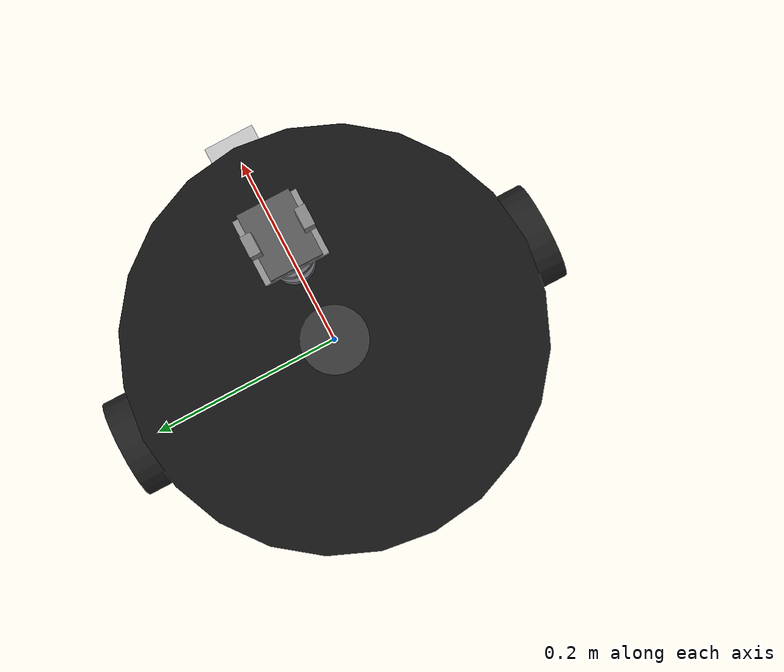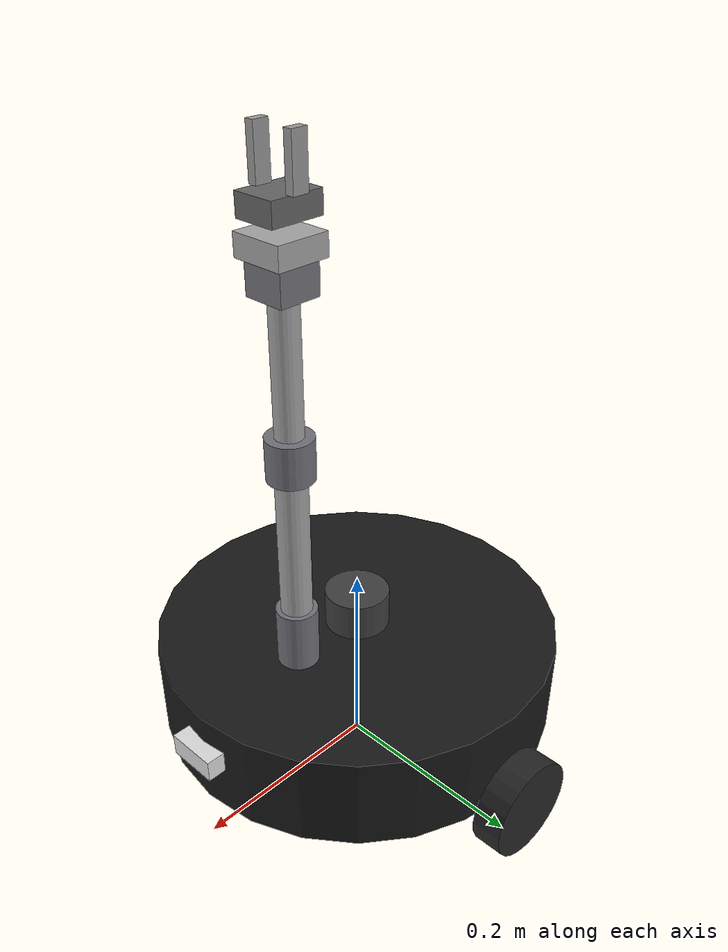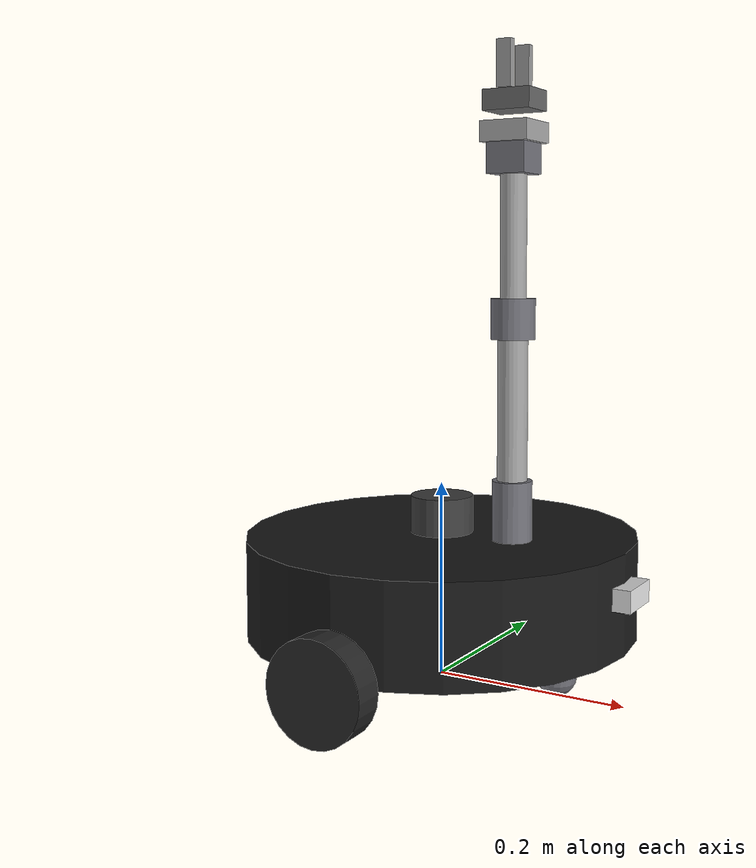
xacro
<?xml version="1.0"?>
<robot name="toy_robot" xmlns:xacro="http://www.ros.org/wiki/xacro">

    <xacro:include filename="$(find toy_robot_description)/urdf/dimensions.xacro" />
    <xacro:include filename="$(find toy_robot_description)/urdf/base_mobile.xacro" />
    <xacro:include filename="$(find toy_robot_description)/urdf/wheels.xacro" />
    <xacro:include filename="$(find toy_robot_description)/urdf/camera.xacro" />
    <xacro:include filename="$(find toy_robot_description)/urdf/lidar.xacro" />
    <xacro:include filename="$(find toy_robot_description)/urdf/arm_6dof.xacro" />
    <xacro:include filename="$(find toy_robot_description)/urdf/gripper.xacro" />
    <xacro:include filename="$(find toy_robot_description)/urdf/gazebo_plugins.xacro" />

</robot>

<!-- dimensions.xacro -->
<robot name="toy_robot" xmlns:xacro="http://www.ros.org/wiki/xacro">

    <!-- Base -->
    <xacro:property name="base_radius" value="0.2" />
    <xacro:property name="base_height" value="0.1" />
    <xacro:property name="base_mass" value="3.5" />

    <!-- Camera -->
    <xacro:property name="camera_size_x" value="0.03" />
    <xacro:property name="camera_size_y" value="0.05" />
    <xacro:property name="camera_size_z" value="0.022" />
    <xacro:property name="camera_mass" value="0.07" />
    <xacro:property name="camera_mount_x" value="${base_radius}" />
    <xacro:property name="camera_mount_z" value="${base_height/2}" />

    <!-- Arm -->
    <xacro:property name="shoulder_length" value="0.06" />
    <xacro:property name="arm_length" value="0.14" />
    <xacro:property name="elbow_length" value="0.04" />
    <xacro:property name="forearm_length" value="0.12" />
    <xacro:property name="wrist_height" value="0.03" />
    <xacro:property name="wrist_size_x" value="0.04" />
    <xacro:property name="wrist_size_y" value="0.04" />
    <xacro:property name="hand_height" value="0.02" />
    <xacro:property name="hand_size_x" value="0.05" />
    <xacro:property name="hand_size_y" value="0.05" />

    <xacro:property name="shoulder_radius" value="0.020" />
    <xacro:property name="arm_radius" value="0.015" />
    <xacro:property name="elbow_radius" value="0.022" />
    <xacro:property name="forearm_radius" value="0.013" />

    <xacro:property name="shoulder_mass" value="0.12" />
    <xacro:property name="arm_mass" value="0.18" />
    <xacro:property name="elbow_mass" value="0.08" />
    <xacro:property name="forearm_mass" value="0.12" />
    <xacro:property name="wrist_mass" value="0.06" />
    <xacro:property name="hand_mass" value="0.05" />

    <xacro:property name="arm_mount_x" value="${0.4 * base_radius}" />
    <xacro:property name="arm_mount_z" value="${base_height}" />

    <!-- Gripper -->
    <xacro:property name="palm_x" value="0.05" />
    <xacro:property name="palm_y" value="0.04" />
    <xacro:property name="palm_z" value="0.02" />
    <xacro:property name="palm_mass" value="0.04" />

    <xacro:property name="finger_x" value="0.015" />
    <xacro:property name="finger_y" value="0.008" />
    <xacro:property name="finger_z" value="0.045" />
    <xacro:property name="finger_mass" value="0.015" />

    <xacro:property name="finger_y_offset" value="0.02" />
    <xacro:property name="finger_open_max" value="0.025" />

    <!-- LiDAR -->
    <xacro:property name="lidar_radius" value="0.032" />
    <xacro:property name="lidar_size_z" value="0.038" />
    <xacro:property name="lidar_mass" value="0.08" />

    <!-- Wheels -->
    <xacro:property name="wheel_radius" value="0.05" />
    <xacro:property name="wheel_width" value="0.03" />
    <xacro:property name="wheel_mass" value="0.1" />
    <xacro:property name="caster_radius" value="0.02" />
    <xacro:property name="caster_mass" value="0.05" />
    <!-- wheel axle Y: just outside the base cylinder -->
    <xacro:property name="wheel_y" value="${base_radius + wheel_width/2}" />

    <!-- Colors (RGBA) -->
    <!-- joints: dark steel -->
    <xacro:property name="color_joint" value="0.45 0.45 0.48 1.0" />
    <!-- links: light gray -->
    <xacro:property name="color_link" value="0.65 0.65 0.65 1.0" />
    <!-- camera: near white -->
    <xacro:property name="color_camera" value="0.88 0.88 0.88 1.0" />
    <!-- lidar: dark gray -->
    <xacro:property name="color_lidar" value="0.25 0.25 0.25 1.0" />
    <!-- rubber dark -->
    <xacro:property name="color_wheel" value="0.15 0.15 0.15 1.0" />

</robot>

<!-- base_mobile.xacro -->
<robot name="toy_robot" xmlns:xacro="http://www.ros.org/wiki/xacro">

    <link name="base_footprint" />

    <joint name="base_joint" type="fixed">
        <parent link="base_footprint" />
        <child link="base_link" />
        <origin xyz="0 0 ${wheel_radius}" rpy="0 0 0" />
    </joint>

    <link name="base_link">
        <visual>
            <origin xyz="0 0 ${base_height/2}" rpy="0 0 0" />
            <geometry>
                <cylinder length="${base_height}" radius="${base_radius}" />
            </geometry>
            <material name="black">
                <color rgba="0.1 0.1 0.1 1.0" />
            </material>
        </visual>
        <collision>
            <origin xyz="0 0 ${base_height/2}" rpy="0 0 0" />
            <geometry>
                <cylinder length="${base_height}" radius="${base_radius}" />
            </geometry>
        </collision>
        <inertial>
            <origin xyz="0 0 ${base_height * 0.4}" rpy="0 0 0" />
            <mass value="${base_mass}" />
            <inertia
                ixx="${base_mass * (3 * base_radius * base_radius + base_height * base_height) / 12}"
                ixy="0.0" ixz="0.0"
                iyy="${base_mass * (3 * base_radius * base_radius + base_height * base_height) / 12}"
                iyz="0.0"
                izz="${base_mass * base_radius * base_radius / 2}" />
        </inertial>
    </link>

</robot>

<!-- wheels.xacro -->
<robot name="toy_robot" xmlns:xacro="http://www.ros.org/wiki/xacro">

    <!-- Roue gauche -->
    <joint name="left_wheel_joint" type="continuous">
        <parent link="base_link" />
        <child link="left_wheel_link" />
        <origin xyz="0 ${wheel_y} 0" rpy="0 0 0" />
        <axis xyz="0 1 0" />
    </joint>

    <link name="left_wheel_link">
        <visual>
            <geometry>
                <cylinder length="${wheel_width}" radius="${wheel_radius}" />
            </geometry>
            <origin xyz="0 0 0" rpy="1.5707963 0 0" />
            <material name="wheel_rubber">
                <color rgba="${color_wheel}" />
            </material>
        </visual>
        <collision>
            <geometry>
                <cylinder length="${wheel_width}" radius="${wheel_radius}" />
            </geometry>
            <origin xyz="0 0 0" rpy="1.5707963 0 0" />
        </collision>
        <inertial>
            <origin xyz="0 0 0" rpy="0 0 0" />
            <mass value="${wheel_mass}" />
            <inertia
                ixx="${wheel_mass * (3 * wheel_radius * wheel_radius + wheel_width * wheel_width) / 12}"
                ixy="0.0" ixz="0.0"
                iyy="${wheel_mass * wheel_radius * wheel_radius / 2}"
                iyz="0.0"
                izz="${wheel_mass * (3 * wheel_radius * wheel_radius + wheel_width * wheel_width) / 12}" />
        </inertial>
    </link>

    <!-- Roue droite -->
    <joint name="right_wheel_joint" type="continuous">
        <parent link="base_link" />
        <child link="right_wheel_link" />
        <origin xyz="0 ${-wheel_y} 0" rpy="0 0 0" />
        <axis xyz="0 1 0" />
    </joint>

    <link name="right_wheel_link">
        <visual>
            <geometry>
                <cylinder length="${wheel_width}" radius="${wheel_radius}" />
            </geometry>
            <origin xyz="0 0 0" rpy="1.5707963 0 0" />
            <material name="wheel_rubber">
                <color rgba="${color_wheel}" />
            </material>
        </visual>
        <collision>
            <geometry>
                <cylinder length="${wheel_width}" radius="${wheel_radius}" />
            </geometry>
            <origin xyz="0 0 0" rpy="1.5707963 0 0" />
        </collision>
        <inertial>
            <origin xyz="0 0 0" rpy="0 0 0" />
            <mass value="${wheel_mass}" />
            <inertia
                ixx="${wheel_mass * (3 * wheel_radius * wheel_radius + wheel_width * wheel_width) / 12}"
                ixy="0.0" ixz="0.0"
                iyy="${wheel_mass * wheel_radius * wheel_radius / 2}"
                iyz="0.0"
                izz="${wheel_mass * (3 * wheel_radius * wheel_radius + wheel_width * wheel_width) / 12}" />
        </inertial>
    </link>

    <!-- Roulette avant (caster) -->
    <joint name="caster_joint" type="fixed">
        <parent link="base_link" />
        <child link="caster_link" />
        <origin xyz="${base_radius * 0.65} 0 ${-(wheel_radius - caster_radius)}" rpy="0 0 0" />
    </joint>

    <link name="caster_link">
        <visual>
            <geometry>
                <sphere radius="${caster_radius}" />
            </geometry>
            <origin xyz="0 0 0" rpy="0 0 0" />
            <material name="caster_gray">
                <color rgba="${color_joint}" />
            </material>
        </visual>
        <collision>
            <geometry>
                <sphere radius="${caster_radius}" />
            </geometry>
            <origin xyz="0 0 0" rpy="0 0 0" />
        </collision>
        <inertial>
            <origin xyz="0 0 0" rpy="0 0 0" />
            <mass value="${caster_mass}" />
            <inertia
                ixx="${2 * caster_mass * caster_radius * caster_radius / 5}"
                ixy="0.0" ixz="0.0"
                iyy="${2 * caster_mass * caster_radius * caster_radius / 5}"
                iyz="0.0"
                izz="${2 * caster_mass * caster_radius * caster_radius / 5}" />
        </inertial>
    </link>

</robot>

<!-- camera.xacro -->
<robot name="toy_robot" xmlns:xacro="http://www.ros.org/wiki/xacro">

    <joint name="camera_mount_joint" type="fixed">
        <parent link="base_link" />
        <child link="camera_link" />
        <origin xyz="${camera_mount_x} 0 ${camera_mount_z}" rpy="0 0 0" />
    </joint>

    <link name="camera_link">
        <visual>
            <origin xyz="0 0 ${camera_size_z/2}" rpy="0 0 0" />
            <geometry>
                <box size="${camera_size_x} ${camera_size_y} ${camera_size_z}" />
            </geometry>
            <material name="camera_body">
                <color rgba="${color_camera}" />
            </material>
        </visual>
        <collision>
            <origin xyz="0 0 ${camera_size_z/2}" rpy="0 0 0" />
            <geometry>
                <box size="${camera_size_x} ${camera_size_y} ${camera_size_z}" />
            </geometry>
        </collision>
        <inertial>
            <origin xyz="0 0 ${camera_size_z/2}" rpy="0 0 0" />
            <mass value="${camera_mass}" />
            <inertia
                ixx="${camera_mass * (camera_size_y * camera_size_y + camera_size_z * camera_size_z) / 12}"
                ixy="0.0" ixz="0.0"
                iyy="${camera_mass * (camera_size_x * camera_size_x + camera_size_z * camera_size_z) / 12}"
                iyz="0.0"
                izz="${camera_mass * (camera_size_x * camera_size_x + camera_size_y * camera_size_y) / 12}" />
        </inertial>
    </link>

    <joint name="camera_optical_joint" type="fixed">
        <parent link="camera_link" />
        <child link="camera_optical_frame" />
        <origin xyz="0 0 0" rpy="-1.57079632679 0 -1.57079632679" />
    </joint>

    <link name="camera_optical_frame" />

</robot>

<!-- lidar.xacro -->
<robot name="toy_robot" xmlns:xacro="http://www.ros.org/wiki/xacro">

    <!-- 2D LiDAR Laser Scanner -->
    <!-- Mounted on top center of the base for 360 degree scan -->
    <!-- Publishes to /scan (bridged via ros_gz_bridge) -->

    <!-- LiDAR mount joint - fixed to base_link, centered on top -->
    <joint name="lidar_mount_joint" type="fixed">
        <parent link="base_link" />
        <child link="lidar_link" />
        <origin xyz="0 0 ${base_height + lidar_size_z/2}" rpy="0 0 0" />
    </joint>

    <!-- LiDAR link -->
    <link name="lidar_link">
        <visual>
            <origin xyz="0 0 0" rpy="0 0 0" />
            <geometry>
                <cylinder radius="${lidar_radius}" length="${lidar_size_z}" />
            </geometry>
            <material name="lidar_body">
                <color rgba="${color_lidar}" />
            </material>
        </visual>
        <collision>
            <origin xyz="0 0 0" rpy="0 0 0" />
            <geometry>
                <cylinder radius="${lidar_radius}" length="${lidar_size_z}" />
            </geometry>
        </collision>
        <inertial>
            <origin xyz="0 0 0" rpy="0 0 0" />
            <mass value="${lidar_mass}" />
            <inertia
                ixx="${lidar_mass * (3 * lidar_radius * lidar_radius + lidar_size_z * lidar_size_z) / 12}"
                ixy="0"
                ixz="0"
                iyy="${lidar_mass * (3 * lidar_radius * lidar_radius + lidar_size_z * lidar_size_z) / 12}"
                iyz="0"
                izz="${lidar_mass * lidar_radius * lidar_radius / 2}" />
        </inertial>
    </link>

</robot>

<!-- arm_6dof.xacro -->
<robot name="toy_robot" xmlns:xacro="http://www.ros.org/wiki/xacro">

    <joint name="arm_joint_1" type="revolute">
        <parent link="base_link" />
        <child link="shoulder_link" />
        <origin xyz="${arm_mount_x} 0 ${arm_mount_z}" rpy="0 0 0" />
        <axis xyz="0 0 1" />
        <dynamics damping="5.0" friction="2.0" />
        <limit effort="1000.0" velocity="1.0" lower="-3.14" upper="3.14" />
    </joint>

    <link name="shoulder_link">
        <visual>
            <geometry>
                <cylinder length="${shoulder_length}" radius="${shoulder_radius}" />
            </geometry>
            <origin xyz="0 0 ${shoulder_length/2}" rpy="0 0 0" />
            <material name="arm_joint">
                <color rgba="${color_joint}" />
            </material>
        </visual>
        <collision>
            <geometry>
                <cylinder length="${shoulder_length}" radius="${shoulder_radius}" />
            </geometry>
            <origin xyz="0 0 ${shoulder_length/2}" rpy="0 0 0" />
        </collision>
        <inertial>
            <origin xyz="0 0 ${shoulder_length/2}" rpy="0 0 0" />
            <mass value="${shoulder_mass}" />
            <inertia
                ixx="${shoulder_mass * (3 * shoulder_radius * shoulder_radius + shoulder_length * shoulder_length) / 12}"
                ixy="0.0" ixz="0.0"
                iyy="${shoulder_mass * (3 * shoulder_radius * shoulder_radius + shoulder_length * shoulder_length) / 12}"
                iyz="0.0"
                izz="${shoulder_mass * shoulder_radius * shoulder_radius / 2}" />
        </inertial>
    </link>

    <joint name="arm_joint_2" type="revolute">
        <parent link="shoulder_link" />
        <child link="arm_link" />
        <origin xyz="0 0 ${shoulder_length}" rpy="0 0 0" />
        <axis xyz="0 1 0" />
        <dynamics damping="5.0" friction="2.0" />
        <limit effort="1000.0" velocity="1.0" lower="-1.57" upper="1.57" />
    </joint>

    <link name="arm_link">
        <visual>
            <geometry>
                <cylinder length="${arm_length}" radius="${arm_radius}" />
            </geometry>
            <origin xyz="0 0 ${arm_length/2}" rpy="0 0 0" />
            <material name="arm_link1">
                <color rgba="${color_link}" />
            </material>
        </visual>
        <collision>
            <geometry>
                <cylinder length="${arm_length}" radius="${arm_radius}" />
            </geometry>
            <origin xyz="0 0 ${arm_length/2}" rpy="0 0 0" />
        </collision>
        <inertial>
            <origin xyz="0 0 ${arm_length/2}" rpy="0 0 0" />
            <mass value="${arm_mass}" />
            <inertia
                ixx="${arm_mass * (3 * arm_radius * arm_radius + arm_length * arm_length) / 12}"
                ixy="0.0" ixz="0.0"
                iyy="${arm_mass * (3 * arm_radius * arm_radius + arm_length * arm_length) / 12}"
                iyz="0.0"
                izz="${arm_mass * arm_radius * arm_radius / 2}" />
        </inertial>
    </link>

    <joint name="arm_joint_3" type="revolute">
        <parent link="arm_link" />
        <child link="elbow_link" />
        <origin xyz="0 0 ${arm_length}" rpy="0 0 0" />
        <axis xyz="0 1 0" />
        <dynamics damping="5.0" friction="2.0" />
        <limit effort="1000.0" velocity="1.0" lower="-1.57" upper="1.57" />
    </joint>

    <link name="elbow_link">
        <visual>
            <geometry>
                <cylinder length="${elbow_length}" radius="${elbow_radius}" />
            </geometry>
            <origin xyz="0 0 ${elbow_length/2}" rpy="0 0 0" />
            <material name="arm_joint2">
                <color rgba="${color_joint}" />
            </material>
        </visual>
        <collision>
            <geometry>
                <cylinder length="${elbow_length}" radius="${elbow_radius}" />
            </geometry>
            <origin xyz="0 0 ${elbow_length/2}" rpy="0 0 0" />
        </collision>
        <inertial>
            <origin xyz="0 0 ${elbow_length/2}" rpy="0 0 0" />
            <mass value="${elbow_mass}" />
            <inertia
                ixx="${elbow_mass * (3 * elbow_radius * elbow_radius + elbow_length * elbow_length) / 12}"
                ixy="0.0" ixz="0.0"
                iyy="${elbow_mass * (3 * elbow_radius * elbow_radius + elbow_length * elbow_length) / 12}"
                iyz="0.0"
                izz="${elbow_mass * elbow_radius * elbow_radius / 2}" />
        </inertial>
    </link>

    <joint name="arm_joint_4" type="revolute">
        <parent link="elbow_link" />
        <child link="forearm_link" />
        <origin xyz="0 0 ${elbow_length}" rpy="0 0 0" />
        <axis xyz="0 0 1" />
        <dynamics damping="5.0" friction="2.0" />
        <limit effort="1000.0" velocity="1.0" lower="-3.14" upper="3.14" />
    </joint>

    <link name="forearm_link">
        <visual>
            <geometry>
                <cylinder length="${forearm_length}" radius="${forearm_radius}" />
            </geometry>
            <origin xyz="0 0 ${forearm_length/2}" rpy="0 0 0" />
            <material name="arm_link2">
                <color rgba="${color_link}" />
            </material>
        </visual>
        <collision>
            <geometry>
                <cylinder length="${forearm_length}" radius="${forearm_radius}" />
            </geometry>
            <origin xyz="0 0 ${forearm_length/2}" rpy="0 0 0" />
        </collision>
        <inertial>
            <origin xyz="0 0 ${forearm_length/2}" rpy="0 0 0" />
            <mass value="${forearm_mass}" />
            <inertia
                ixx="${forearm_mass * (3 * forearm_radius * forearm_radius + forearm_length * forearm_length) / 12}"
                ixy="0.0" ixz="0.0"
                iyy="${forearm_mass * (3 * forearm_radius * forearm_radius + forearm_length * forearm_length) / 12}"
                iyz="0.0"
                izz="${forearm_mass * forearm_radius * forearm_radius / 2}" />
        </inertial>
    </link>

    <joint name="arm_joint_5" type="revolute">
        <parent link="forearm_link" />
        <child link="wrist_link" />
        <origin xyz="0 0 ${forearm_length}" rpy="0 0 0" />
        <axis xyz="0 1 0" />
        <dynamics damping="5.0" friction="2.0" />
        <limit effort="1000.0" velocity="1.0" lower="-1.57" upper="1.57" />
    </joint>

    <link name="wrist_link">
        <visual>
            <geometry>
                <box size="${wrist_size_x} ${wrist_size_y} ${wrist_height}" />
            </geometry>
            <origin xyz="0 0 ${wrist_height/2}" rpy="0 0 0" />
            <material name="arm_joint3">
                <color rgba="${color_joint}" />
            </material>
        </visual>
        <collision>
            <geometry>
                <box size="${wrist_size_x} ${wrist_size_y} ${wrist_height}" />
            </geometry>
            <origin xyz="0 0 ${wrist_height/2}" rpy="0 0 0" />
        </collision>
        <inertial>
            <origin xyz="0 0 ${wrist_height/2}" rpy="0 0 0" />
            <mass value="${wrist_mass}" />
            <inertia
                ixx="${wrist_mass * (wrist_size_y * wrist_size_y + wrist_height * wrist_height) / 12}"
                ixy="0.0" ixz="0.0"
                iyy="${wrist_mass * (wrist_size_x * wrist_size_x + wrist_height * wrist_height) / 12}"
                iyz="0.0"
                izz="${wrist_mass * (wrist_size_x * wrist_size_x + wrist_size_y * wrist_size_y) / 12}" />
        </inertial>
    </link>

    <joint name="arm_joint_6" type="continuous">
        <parent link="wrist_link" />
        <child link="hand_link" />
        <origin xyz="0 0 ${wrist_height}" rpy="0 0 0" />
        <axis xyz="0 0 1" />
        <dynamics damping="5.0" friction="2.0" />
    </joint>

    <link name="hand_link">
        <visual>
            <geometry>
                <box size="${hand_size_x} ${hand_size_y} ${hand_height}" />
            </geometry>
            <origin xyz="0 0 ${hand_height/2}" rpy="0 0 0" />
            <material name="arm_link3">
                <color rgba="${color_link}" />
            </material>
        </visual>
        <collision>
            <geometry>
                <box size="${hand_size_x} ${hand_size_y} ${hand_height}" />
            </geometry>
            <origin xyz="0 0 ${hand_height/2}" rpy="0 0 0" />
        </collision>
        <inertial>
            <origin xyz="0 0 ${hand_height/2}" rpy="0 0 0" />
            <mass value="${hand_mass}" />
            <inertia
                ixx="${hand_mass * (hand_size_y * hand_size_y + hand_height * hand_height) / 12}"
                ixy="0.0" ixz="0.0"
                iyy="${hand_mass * (hand_size_x * hand_size_x + hand_height * hand_height) / 12}"
                iyz="0.0"
                izz="${hand_mass * (hand_size_x * hand_size_x + hand_size_y * hand_size_y) / 12}" />
        </inertial>
    </link>

    <joint name="hand_tool_joint" type="fixed">
        <parent link="hand_link" />
        <child link="gripper_mount_link" />
        <origin xyz="0 0 ${hand_height}" rpy="0 0 0" />
    </joint>

    <link name="gripper_mount_link" />

</robot>

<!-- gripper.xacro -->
<robot name="toy_robot" xmlns:xacro="http://www.ros.org/wiki/xacro">

    <!-- Paume de la pince, attachee a gripper_mount_link -->
    <joint name="gripper_palm_joint" type="fixed">
        <parent link="gripper_mount_link" />
        <child link="gripper_palm_link" />
        <origin xyz="0 0 0.01" rpy="0 0 0" />
    </joint>

    <link name="gripper_palm_link">
        <visual>
            <geometry>
                <box size="${palm_x} ${palm_y} ${palm_z}" />
            </geometry>
            <origin xyz="0 0 ${palm_z/2}" rpy="0 0 0" />
            <material name="gripper_gray">
                <color rgba="0.4 0.4 0.4 1.0" />
            </material>
        </visual>
        <collision>
            <geometry>
                <box size="${palm_x} ${palm_y} ${palm_z}" />
            </geometry>
            <origin xyz="0 0 ${palm_z/2}" rpy="0 0 0" />
        </collision>
        <inertial>
            <origin xyz="0 0 ${palm_z/2}" rpy="0 0 0" />
            <mass value="${palm_mass}" />
            <inertia
                ixx="${palm_mass * (palm_y * palm_y + palm_z * palm_z) / 12}"
                ixy="0.0" ixz="0.0"
                iyy="${palm_mass * (palm_x * palm_x + palm_z * palm_z) / 12}"
                iyz="0.0"
                izz="${palm_mass * (palm_x * palm_x + palm_y * palm_y) / 12}" />
        </inertial>
    </link>

    <!-- Doigt gauche (glisse vers +y) -->
    <joint name="gripper_left_joint" type="prismatic">
        <parent link="gripper_palm_link" />
        <child link="gripper_left_link" />
        <origin xyz="0 ${finger_y_offset} ${palm_z}" rpy="0 0 0" />
        <axis xyz="0 1 0" />
        <dynamics damping="10.0" friction="5.0" />
        <limit effort="100.0" velocity="0.5" lower="0.0" upper="${finger_open_max}" />
    </joint>

    <link name="gripper_left_link">
        <visual>
            <geometry>
                <box size="${finger_x} ${finger_y} ${finger_z}" />
            </geometry>
            <origin xyz="0 0 ${finger_z/2}" rpy="0 0 0" />
            <material name="gripper_finger">
                <color rgba="0.6 0.6 0.6 1.0" />
            </material>
        </visual>
        <collision>
            <geometry>
                <box size="${finger_x} ${finger_y} ${finger_z}" />
            </geometry>
            <origin xyz="0 0 ${finger_z/2}" rpy="0 0 0" />
        </collision>
        <inertial>
            <origin xyz="0 0 ${finger_z/2}" rpy="0 0 0" />
            <mass value="${finger_mass}" />
            <inertia
                ixx="${finger_mass * (finger_y * finger_y + finger_z * finger_z) / 12}"
                ixy="0.0" ixz="0.0"
                iyy="${finger_mass * (finger_x * finger_x + finger_z * finger_z) / 12}"
                iyz="0.0"
                izz="${finger_mass * (finger_x * finger_x + finger_y * finger_y) / 12}" />
        </inertial>
    </link>

    <!-- Doigt droit (glisse vers -y) -->
    <joint name="gripper_right_joint" type="prismatic">
        <parent link="gripper_palm_link" />
        <child link="gripper_right_link" />
        <origin xyz="0 -${finger_y_offset} ${palm_z}" rpy="0 0 0" />
        <axis xyz="0 -1 0" />
        <dynamics damping="10.0" friction="5.0" />
        <limit effort="100.0" velocity="0.5" lower="0.0" upper="${finger_open_max}" />
    </joint>

    <link name="gripper_right_link">
        <visual>
            <geometry>
                <box size="${finger_x} ${finger_y} ${finger_z}" />
            </geometry>
            <origin xyz="0 0 ${finger_z/2}" rpy="0 0 0" />
            <material name="gripper_finger">
                <color rgba="0.6 0.6 0.6 1.0" />
            </material>
        </visual>
        <collision>
            <geometry>
                <box size="${finger_x} ${finger_y} ${finger_z}" />
            </geometry>
            <origin xyz="0 0 ${finger_z/2}" rpy="0 0 0" />
        </collision>
        <inertial>
            <origin xyz="0 0 ${finger_z/2}" rpy="0 0 0" />
            <mass value="${finger_mass}" />
            <inertia
                ixx="${finger_mass * (finger_y * finger_y + finger_z * finger_z) / 12}"
                ixy="0.0" ixz="0.0"
                iyy="${finger_mass * (finger_x * finger_x + finger_z * finger_z) / 12}"
                iyz="0.0"
                izz="${finger_mass * (finger_x * finger_x + finger_y * finger_y) / 12}" />
        </inertial>
    </link>

    <!-- Frame TCP au bout des doigts -->
    <joint name="tcp_joint" type="fixed">
        <parent link="gripper_palm_link" />
        <child link="tcp_link" />
        <origin xyz="0 0 ${palm_z + finger_z}" rpy="0 0 0" />
    </joint>

    <link name="tcp_link" />

</robot>
